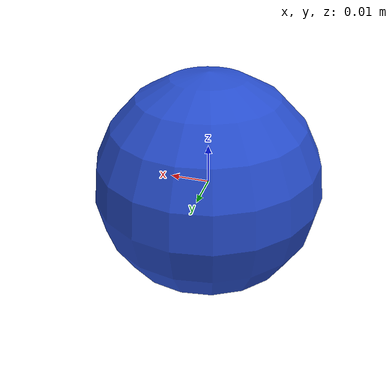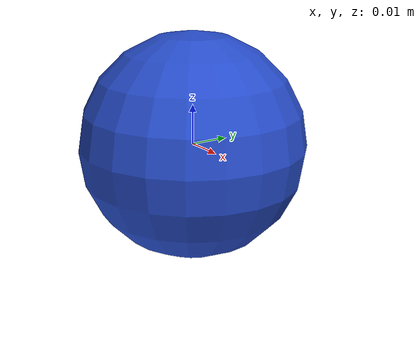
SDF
<?xml version="1.0"?>
<sdf version="1.6">
  <model name="blue_projectile">
    <link name="link">
      <inertial>
        <mass>0.04</mass>
        <!-- Mark only - based on cylinder -->
        <inertia>
          <ixx>0.00002166</ixx>
          <ixy>0</ixy>
          <ixz>0</ixz>
          <iyy>00002166</iyy>
          <iyz>0</iyz>
          <izz>00002166</izz>
        </inertia>
      </inertial>
      <collision name="collision">
        <geometry>
          <sphere>
            <radius>0.0285</radius>
          </sphere>
        </geometry>
      </collision>
      <visual name="visual">
        <geometry>
          <sphere>
            <radius>0.0285</radius>
          </sphere>
        </geometry>
        <material>
          <script>
            <uri>model://blue_projectile/materials/scripts/blue_projectile.material</uri>
            <name>blue_projectile/Blue</name>
          </script>
        </material>
      </visual>
    </link>
    <plugin name="BuoyancyPlugin" filename="libbuoyancy_gazebo_plugin.so">
      <wave_model>ocean_waves</wave_model>
      <fluid_density>1000</fluid_density>
      <fluid_level>0.0</fluid_level>
      <linear_drag>25.0</linear_drag>
      <angular_drag>2.0</angular_drag>
      <buoyancy name="buoyancy_sphere">
        <link_name>link</link_name>
        <pose>0 0 -0.02 0 0 0</pose>
        <geometry>
          <sphere>
            <radius>0.0285</radius>
          </sphere>
        </geometry>
      </buoyancy>
    </plugin>
    <plugin name="p3d_base_controller" filename="libgazebo_ros_p3d.so">
      <alwaysOn>true</alwaysOn>
      <updateRate>30</updateRate>
      <bodyName>blue_projectile::link</bodyName>
      <topicName>blue_projectile/odom</topicName>
      <gaussianNoise>0</gaussianNoise>
      <frameName>world</frameName>
      <xyzOffsets>0 0 0</xyzOffsets>
      <rpyOffsets>0 0 0</rpyOffsets>
    </plugin>
  </model>
</sdf>
